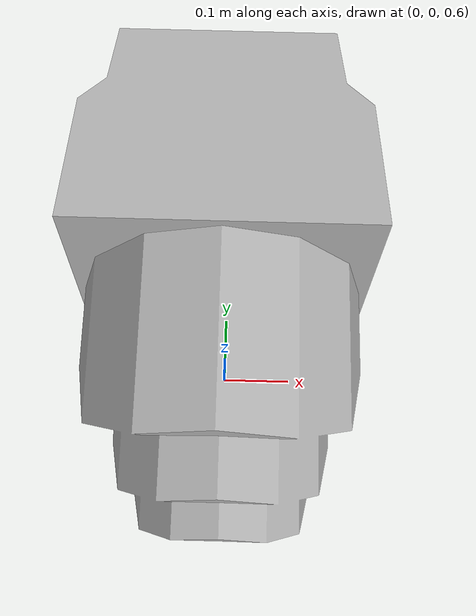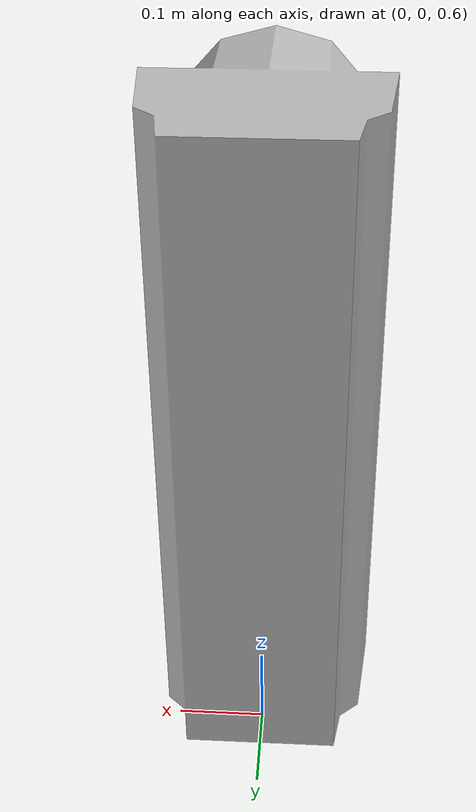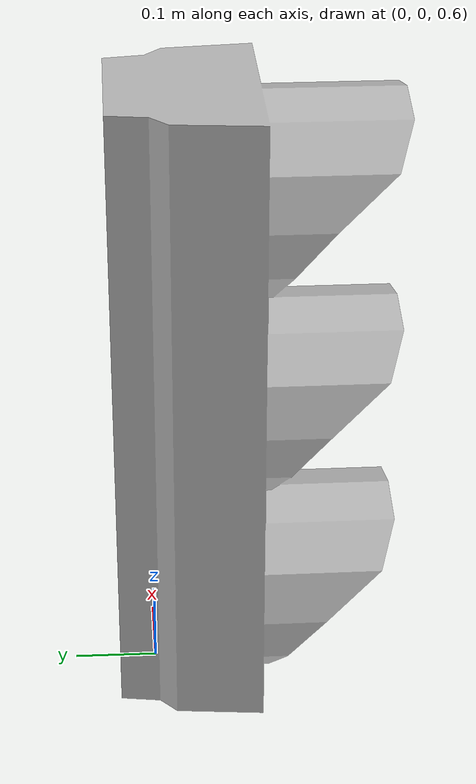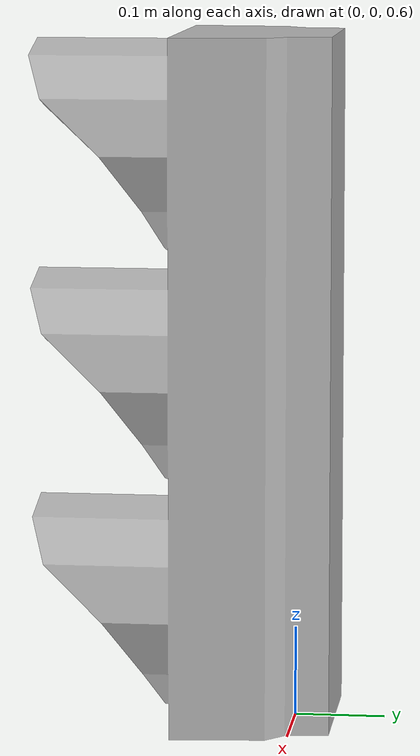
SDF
<?xml version="1.0" ?>
<sdf version="1.6">
  <model name="stop_light">

    <static>true</static>

    <!-- this pose can be overriden when including the light on another model -->
    <pose>0 0 1.0 0 0 0</pose>

    <link name="link">
      <collision name="collision">
        <pose>0 0 0.38 0 0 0</pose>
        <geometry>
          <mesh>
            <uri>model://stop_light/meshes/stop_light.obj</uri>
            <scale>0.01 0.01 0.01</scale>
          </mesh>
        </geometry>
      </collision>

      <visual name="frame">
        <pose>0 0 0.38 0 0 0</pose>
        <geometry>
          <mesh>
            <uri>model://stop_light/meshes/stop_light.obj</uri>
            <scale>0.01 0.01 0.01</scale>
          </mesh>
        </geometry>
      </visual>

      <visual name="red">
        <pose>-0.001123 -0.082251 0.247514 0 0 0</pose>
        <geometry>
          <sphere>
            <radius>0.1012</radius>
          </sphere>
        </geometry>
        <material>
          <script>
            <uri>model://stop_light/materials/scripts/</uri>
            <uri>model://stop_light/materials/textures/</uri>
            <name>StopLight/Light</name>
          </script>
          <ambient>1 0 0 1</ambient>
          <specular>1 0 0 1</specular>
          <!-- Turn a light on by uncommenting emissive -->
        </material>
      </visual>

      <visual name="yellow">
        <pose>-0.001123 -0.082251 -0.022 0 0 0</pose>
        <geometry>
          <sphere>
            <radius>0.1012</radius>
          </sphere>
        </geometry>
        <material>
          <script>
            <uri>model://stop_light/materials/scripts/</uri>
            <uri>model://stop_light/materials/textures/</uri>
            <name>StopLight/Light</name>
          </script>
          <ambient>1 1 0 1</ambient>
          <specular>1 1 0 1</specular>
        </material>
      </visual>

      <visual name="green">
        <pose>-0.001123 -0.082251 -0.275 0 0 0</pose>
        <geometry>
          <sphere>
            <radius>0.1012</radius>
          </sphere>
        </geometry>
        <material>
          <script>
            <uri>model://stop_light/materials/scripts/</uri>
            <uri>model://stop_light/materials/textures/</uri>
            <name>StopLight/Light</name>
          </script>
          <ambient>0 1 0 1</ambient>
          <specular>0 1 0 1</specular>
        </material>
      </visual>

    </link>
  </model>
</sdf>
